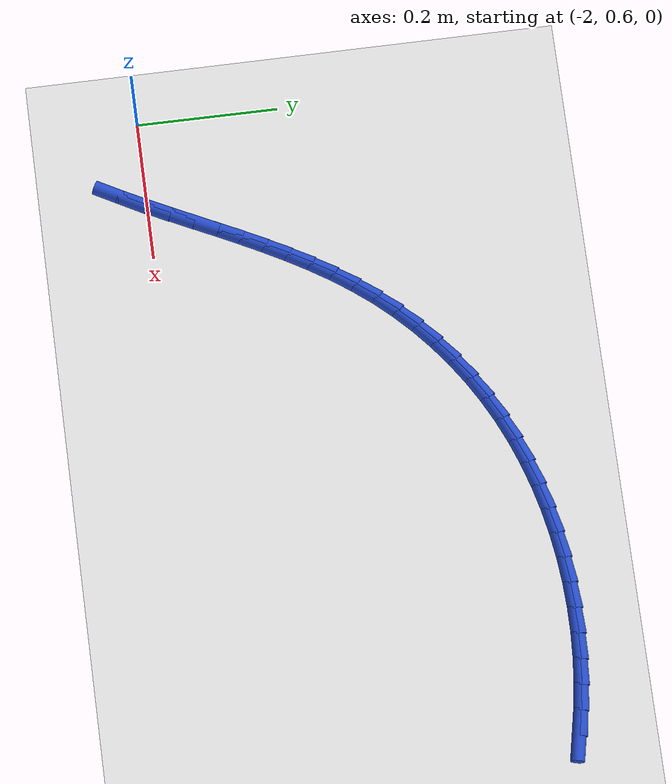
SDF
<sdf version="1.6">
 <world name="default">
  <model name="ground_plane">
   <static>1</static>
   <link name="link">
    <collision name="collision">
     <geometry><plane><normal>0 0 1</normal><size>100 100</size></plane></geometry>
     <surface><friction><ode><mu>100</mu><mu2>50</mu2></ode></friction></surface>
    </collision>
    <visual name="visual">
     <cast_shadows>0</cast_shadows>
     <geometry><plane><normal>0 0 1</normal><size>100 100</size></plane></geometry>
     <material>
      <script><uri>file://media/materials/scripts/gazebo.material</uri><name>Gazebo/WhiteGlow</name></script>
     </material>
    </visual>
   </link>
  </model>
  <model name="line">
   <link name="link_48">
    <pose>-1.046702193370071 1.0980694955713892 0.01 0 1.57 -0.19966582469570557</pose>
    <collision name="collision">
     <geometry><cylinder><radius>0.01</radius><length>0.08</length></cylinder></geometry>
    </collision>
    <visual name="visual">
     <material>
      <script><name>Gazebo/Blue</name><uri>file://media/materials/scripts/gazebo.material</uri></script>
     </material>
     <geometry><cylinder><radius>0.01</radius><length>0.08</length></cylinder></geometry>
    </visual>
   </link>
   <link name="link_49">
    <pose>-1.0810116603881643 1.1050124331525182 0.01 0 1.57 -0.15314128835917507</pose>
    <collision name="collision">
     <geometry><cylinder><radius>0.01</radius><length>0.08</length></cylinder></geometry>
    </collision>
    <visual name="visual">
     <material>
      <script><name>Gazebo/Blue</name><uri>file://media/materials/scripts/gazebo.material</uri></script>
     </material>
     <geometry><cylinder><radius>0.01</radius><length>0.08</length></cylinder></geometry>
    </visual>
   </link>
   <link name="link_50">
    <pose>-1.1158939126349856 1.110396501670565 0.01 0 1.57 -0.10411077980259328</pose>
    <collision name="collision">
     <geometry><cylinder><radius>0.01</radius><length>0.08</length></cylinder></geometry>
    </collision>
    <visual name="visual">
     <material>
      <script><name>Gazebo/Blue</name><uri>file://media/materials/scripts/gazebo.material</uri></script>
     </material>
     <geometry><cylinder><radius>0.01</radius><length>0.08</length></cylinder></geometry>
    </visual>
   </link>
   <link name="link_51">
    <pose>-1.151298236279338 1.1140958488903991 0.01 0 1.57 -0.05562782732073192</pose>
    <collision name="collision">
     <geometry><cylinder><radius>0.01</radius><length>0.08</length></cylinder></geometry>
    </collision>
    <visual name="visual">
     <material>
      <script><name>Gazebo/Blue</name><uri>file://media/materials/scripts/gazebo.material</uri></script>
     </material>
     <geometry><cylinder><radius>0.01</radius><length>0.08</length></cylinder></geometry>
    </visual>
   </link>
   <link name="link_52">
    <pose>-1.1870870752499487 1.116088760327235 0.01 0 1.57 -0.007349846946834233</pose>
    <collision name="collision">
     <geometry><cylinder><radius>0.01</radius><length>0.08</length></cylinder></geometry>
    </collision>
    <visual name="visual">
     <material>
      <script><name>Gazebo/Blue</name><uri>file://media/materials/scripts/gazebo.material</uri></script>
     </material>
     <geometry><cylinder><radius>0.01</radius><length>0.08</length></cylinder></geometry>
    </visual>
   </link>
   <link name="link_53">
    <pose>-1.2231227895957277 1.1163536220816128 0.01 0 1.57 0.04105601154536369</pose>
    <collision name="collision">
     <geometry><cylinder><radius>0.01</radius><length>0.08</length></cylinder></geometry>
    </collision>
    <visual name="visual">
     <material>
      <script><name>Gazebo/Blue</name><uri>file://media/materials/scripts/gazebo.material</uri></script>
     </material>
     <geometry><cylinder><radius>0.01</radius><length>0.08</length></cylinder></geometry>
    </visual>
   </link>
   <link name="link_54">
    <pose>-1.2592677393655891 1.1148688202540762 0.01 0 1.57 0.0899117116685172</pose>
    <collision name="collision">
     <geometry><cylinder><radius>0.01</radius><length>0.08</length></cylinder></geometry>
    </collision>
    <visual name="visual">
     <material>
      <script><name>Gazebo/Blue</name><uri>file://media/materials/scripts/gazebo.material</uri></script>
     </material>
     <geometry><cylinder><radius>0.01</radius><length>0.08</length></cylinder></geometry>
    </visual>
   </link>
   <link name="link_55">
    <pose>-1.2953842846084422 1.1116127409451657 0.01 0 1.57 0.1395297038459506</pose>
    <collision name="collision">
     <geometry><cylinder><radius>0.01</radius><length>0.08</length></cylinder></geometry>
    </collision>
    <visual name="visual">
     <material>
      <script><name>Gazebo/Blue</name><uri>file://media/materials/scripts/gazebo.material</uri></script>
     </material>
     <geometry><cylinder><radius>0.01</radius><length>0.08</length></cylinder></geometry>
    </visual>
   </link>
   <link name="link_56">
    <pose>-1.3313347853732 1.1065637702554234 0.01 0 1.57 0.1902133277188427</pose>
    <collision name="collision">
     <geometry><cylinder><radius>0.01</radius><length>0.08</length></cylinder></geometry>
    </collision>
    <visual name="visual">
     <material>
      <script><name>Gazebo/Blue</name><uri>file://media/materials/scripts/gazebo.material</uri></script>
     </material>
     <geometry><cylinder><radius>0.01</radius><length>0.08</length></cylinder></geometry>
    </visual>
   </link>
   <link name="link_57">
    <pose>-1.366981601708774 1.0997002942853915 0.01 0 1.57 0.2422559096853807</pose>
    <collision name="collision">
     <geometry><cylinder><radius>0.01</radius><length>0.08</length></cylinder></geometry>
    </collision>
    <visual name="visual">
     <material>
      <script><name>Gazebo/Blue</name><uri>file://media/materials/scripts/gazebo.material</uri></script>
     </material>
     <geometry><cylinder><radius>0.01</radius><length>0.08</length></cylinder></geometry>
    </visual>
   </link>
   <link name="link_58">
    <pose>-1.4021870936640757 1.0910006991356112 0.01 0 1.57 0.2959381945803989</pose>
    <collision name="collision">
     <geometry><cylinder><radius>0.01</radius><length>0.08</length></cylinder></geometry>
    </collision>
    <visual name="visual">
     <material>
      <script><name>Gazebo/Blue</name><uri>file://media/materials/scripts/gazebo.material</uri></script>
     </material>
     <geometry><cylinder><radius>0.01</radius><length>0.08</length></cylinder></geometry>
    </visual>
   </link>
   <link name="link_59">
    <pose>-1.4368136212880163 1.080443370906625 0.01 0 1.57 0.35152372943716154</pose>
    <collision name="collision">
     <geometry><cylinder><radius>0.01</radius><length>0.08</length></cylinder></geometry>
    </collision>
    <visual name="visual">
     <material>
      <script><name>Gazebo/Blue</name><uri>file://media/materials/scripts/gazebo.material</uri></script>
     </material>
     <geometry><cylinder><radius>0.01</radius><length>0.08</length></cylinder></geometry>
    </visual>
   </link>
   <link name="link_60">
    <pose>-1.4707235446295075 1.0680066956989742 0.01 0 1.57 0.40925183034037727</pose>
    <collision name="collision">
     <geometry><cylinder><radius>0.01</radius><length>0.08</length></cylinder></geometry>
    </collision>
    <visual name="visual">
     <material>
      <script><name>Gazebo/Blue</name><uri>file://media/materials/scripts/gazebo.material</uri></script>
     </material>
     <geometry><cylinder><radius>0.01</radius><length>0.08</length></cylinder></geometry>
    </visual>
   </link>
   <link name="link_61">
    <pose>-1.5037792237374616 1.0536690596132003 0.01 0 1.57 0.4693249846592563</pose>
    <collision name="collision">
     <geometry><cylinder><radius>0.01</radius><length>0.08</length></cylinder></geometry>
    </collision>
    <visual name="visual">
     <material>
      <script><name>Gazebo/Blue</name><uri>file://media/materials/scripts/gazebo.material</uri></script>
     </material>
     <geometry><cylinder><radius>0.01</radius><length>0.08</length></cylinder></geometry>
    </visual>
   </link>
   <link name="link_62">
    <pose>-1.535843037401736 1.037408954651982 0.01 0 1.57 0.531002575170071</pose>
    <collision name="collision">
     <geometry><cylinder><radius>0.01</radius><length>0.08</length></cylinder></geometry>
    </collision>
    <visual name="visual">
     <material>
      <script><name>Gazebo/Blue</name><uri>file://media/materials/scripts/gazebo.material</uri></script>
     </material>
     <geometry><cylinder><radius>0.01</radius><length>0.08</length></cylinder></geometry>
    </visual>
   </link>
   <link name="link_63">
    <pose>-1.5667833674852367 1.01923879523867 0.01 0 1.57 0.5923176162015378</pose>
    <collision name="collision">
     <geometry><cylinder><radius>0.01</radius><length>0.08</length></cylinder></geometry>
    </collision>
    <visual name="visual">
     <material>
      <script><name>Gazebo/Blue</name><uri>file://media/materials/scripts/gazebo.material</uri></script>
     </material>
     <geometry><cylinder><radius>0.01</radius><length>0.08</length></cylinder></geometry>
    </visual>
   </link>
   <link name="link_64">
    <pose>-1.5964831584346513 0.9992532866648166 0.01 0 1.57 0.653265392172711</pose>
    <collision name="collision">
     <geometry><cylinder><radius>0.01</radius><length>0.08</length></cylinder></geometry>
    </collision>
    <visual name="visual">
     <material>
      <script><name>Gazebo/Blue</name><uri>file://media/materials/scripts/gazebo.material</uri></script>
     </material>
     <geometry><cylinder><radius>0.01</radius><length>0.08</length></cylinder></geometry>
    </visual>
   </link>
   <link name="link_65">
    <pose>-1.6248275200148539 0.9775593700941555 0.01 0 1.57 0.7141873135426705</pose>
    <collision name="collision">
     <geometry><cylinder><radius>0.01</radius><length>0.08</length></cylinder></geometry>
    </collision>
    <visual name="visual">
     <material>
      <script><name>Gazebo/Blue</name><uri>file://media/materials/scripts/gazebo.material</uri></script>
     </material>
     <geometry><cylinder><radius>0.01</radius><length>0.08</length></cylinder></geometry>
    </visual>
   </link>
   <link name="link_66">
    <pose>-1.6517015619907223 0.9542639866904217 0.01 0 1.57 0.7754357213492754</pose>
    <collision name="collision">
     <geometry><cylinder><radius>0.01</radius><length>0.08</length></cylinder></geometry>
    </collision>
    <visual name="visual">
     <material>
      <script><name>Gazebo/Blue</name><uri>file://media/materials/scripts/gazebo.material</uri></script>
     </material>
     <geometry><cylinder><radius>0.01</radius><length>0.08</length></cylinder></geometry>
    </visual>
   </link>
   <link name="link_67">
    <pose>-1.676990394127131 0.929474077617347 0.01 0 1.57 0.8373694479484927</pose>
    <collision name="collision">
     <geometry><cylinder><radius>0.01</radius><length>0.08</length></cylinder></geometry>
    </collision>
    <visual name="visual">
     <material>
      <script><name>Gazebo/Blue</name><uri>file://media/materials/scripts/gazebo.material</uri></script>
     </material>
     <geometry><cylinder><radius>0.01</radius><length>0.08</length></cylinder></geometry>
    </visual>
   </link>
   <link name="link_68">
    <pose>-1.7005791395002339 0.9032965858034078 0.01 0 1.57 0.8986542798066801</pose>
    <collision name="collision">
     <geometry><cylinder><radius>0.01</radius><length>0.08</length></cylinder></geometry>
    </collision>
    <visual name="visual">
     <material>
      <script><name>Gazebo/Blue</name><uri>file://media/materials/scripts/gazebo.material</uri></script>
     </material>
     <geometry><cylinder><radius>0.01</radius><length>0.08</length></cylinder></geometry>
    </visual>
   </link>
   <link name="link_69">
    <pose>-1.722421609306521 0.8758475604999287 0.01 0 1.57 0.953599439414233</pose>
    <collision name="collision">
     <geometry><cylinder><radius>0.01</radius><length>0.08</length></cylinder></geometry>
    </collision>
    <visual name="visual">
     <material>
      <script><name>Gazebo/Blue</name><uri>file://media/materials/scripts/gazebo.material</uri></script>
     </material>
     <geometry><cylinder><radius>0.01</radius><length>0.08</length></cylinder></geometry>
    </visual>
   </link>
   <link name="link_70">
    <pose>-1.7427003036556907 0.8472733693752428 0.01 0 1.57 1.0006414780373705</pose>
    <collision name="collision">
     <geometry><cylinder><radius>0.01</radius><length>0.08</length></cylinder></geometry>
    </collision>
    <visual name="visual">
     <material>
      <script><name>Gazebo/Blue</name><uri>file://media/materials/scripts/gazebo.material</uri></script>
     </material>
     <geometry><cylinder><radius>0.01</radius><length>0.08</length></cylinder></geometry>
    </visual>
   </link>
   <link name="link_71">
    <pose>-1.7616452567336112 0.8177266819245741 0.01 0 1.57 1.039596213281504</pose>
    <collision name="collision">
     <geometry><cylinder><radius>0.01</radius><length>0.08</length></cylinder></geometry>
    </collision>
    <visual name="visual">
     <material>
      <script><name>Gazebo/Blue</name><uri>file://media/materials/scripts/gazebo.material</uri></script>
     </material>
     <geometry><cylinder><radius>0.01</radius><length>0.08</length></cylinder></geometry>
    </visual>
   </link>
   <link name="link_72">
    <pose>-1.7794865027261504 0.7873601676431483 0.01 0 1.57 1.0704538960768264</pose>
    <collision name="collision">
     <geometry><cylinder><radius>0.01</radius><length>0.08</length></cylinder></geometry>
    </collision>
    <visual name="visual">
     <material>
      <script><name>Gazebo/Blue</name><uri>file://media/materials/scripts/gazebo.material</uri></script>
     </material>
     <geometry><cylinder><radius>0.01</radius><length>0.08</length></cylinder></geometry>
    </visual>
   </link>
   <link name="link_73">
    <pose>-1.796454075819175 0.75632649602619 0.01 0 1.57 1.0933028915591734</pose>
    <collision name="collision">
     <geometry><cylinder><radius>0.01</radius><length>0.08</length></cylinder></geometry>
    </collision>
    <visual name="visual">
     <material>
      <script><name>Gazebo/Blue</name><uri>file://media/materials/scripts/gazebo.material</uri></script>
     </material>
     <geometry><cylinder><radius>0.01</radius><length>0.08</length></cylinder></geometry>
    </visual>
   </link>
   <link name="link_74">
    <pose>-1.8127780101985547 0.7247783365689244 0.01 0 1.57 1.1082689704217006</pose>
    <collision name="collision">
     <geometry><cylinder><radius>0.01</radius><length>0.08</length></cylinder></geometry>
    </collision>
    <visual name="visual">
     <material>
      <script><name>Gazebo/Blue</name><uri>file://media/materials/scripts/gazebo.material</uri></script>
     </material>
     <geometry><cylinder><radius>0.01</radius><length>0.08</length></cylinder></geometry>
    </visual>
   </link>
   <link name="link_75">
    <pose>-1.8286883400501555 0.6928683587665766 0.01 0 1.57 1.1154722612779813</pose>
    <collision name="collision">
     <geometry><cylinder><radius>0.01</radius><length>0.08</length></cylinder></geometry>
    </collision>
    <visual name="visual">
     <material>
      <script><name>Gazebo/Blue</name><uri>file://media/materials/scripts/gazebo.material</uri></script>
     </material>
     <geometry><cylinder><radius>0.01</radius><length>0.08</length></cylinder></geometry>
    </visual>
   </link>
   <link name="link_76">
    <pose>-1.8444150995598463 0.6607492321143716 0.01 0 1.57 1.1150008338954642</pose>
    <collision name="collision">
     <geometry><cylinder><radius>0.01</radius><length>0.08</length></cylinder></geometry>
    </collision>
    <visual name="visual">
     <material>
      <script><name>Gazebo/Blue</name><uri>file://media/materials/scripts/gazebo.material</uri></script>
     </material>
     <geometry><cylinder><radius>0.01</radius><length>0.08</length></cylinder></geometry>
    </visual>
   </link>
   <link name="link_77">
    <pose>-1.8601883229134952 0.6285736261075346 0.01 0 1.57 1.1068990324487025</pose>
    <collision name="collision">
     <geometry><cylinder><radius>0.01</radius><length>0.08</length></cylinder></geometry>
    </collision>
    <visual name="visual">
     <material>
      <script><name>Gazebo/Blue</name><uri>file://media/materials/scripts/gazebo.material</uri></script>
     </material>
     <geometry><cylinder><radius>0.01</radius><length>0.08</length></cylinder></geometry>
    </visual>
   </link>
   <link name="link_78">
    <pose>-1.8762380442969695 0.5964942102412901 0.01 0 1.57 1.091169112447207</pose>
    <collision name="collision">
     <geometry><cylinder><radius>0.01</radius><length>0.08</length></cylinder></geometry>
    </collision>
    <visual name="visual">
     <material>
      <script><name>Gazebo/Blue</name><uri>file://media/materials/scripts/gazebo.material</uri></script>
     </material>
     <geometry><cylinder><radius>0.01</radius><length>0.08</length></cylinder></geometry>
    </visual>
   </link>
   <link name="link_79">
    <pose>-1.8927942978961378 0.5646636540108642 0.01 0 1.57 1.0683479902662012</pose>
    <collision name="collision">
     <geometry><cylinder><radius>0.01</radius><length>0.08</length></cylinder></geometry>
    </collision>
    <visual name="visual">
     <material>
      <script><name>Gazebo/Blue</name><uri>file://media/materials/scripts/gazebo.material</uri></script>
     </material>
     <geometry><cylinder><radius>0.01</radius><length>0.08</length></cylinder></geometry>
    </visual>
   </link>
  </model>
 </world>
</sdf>
